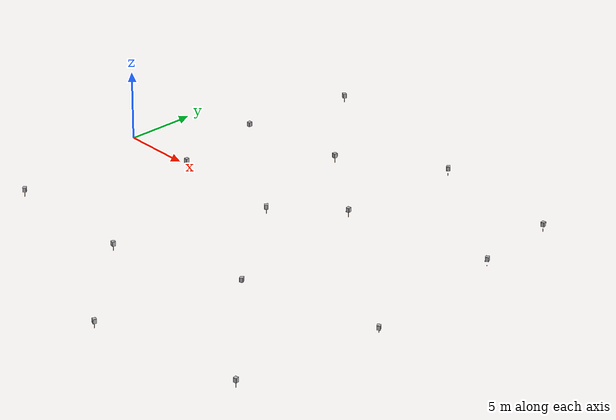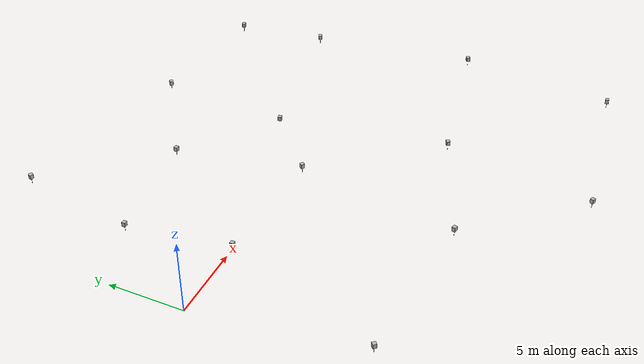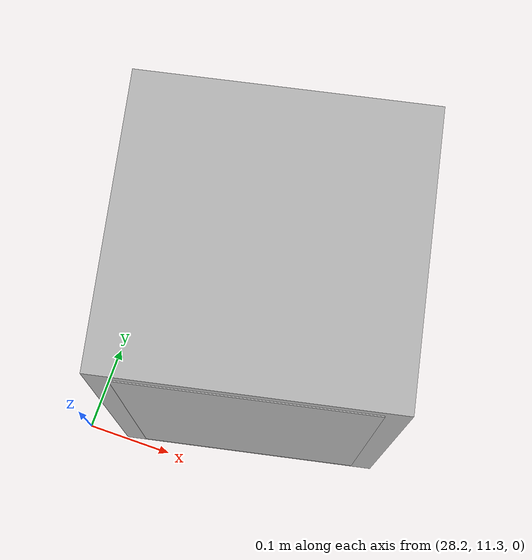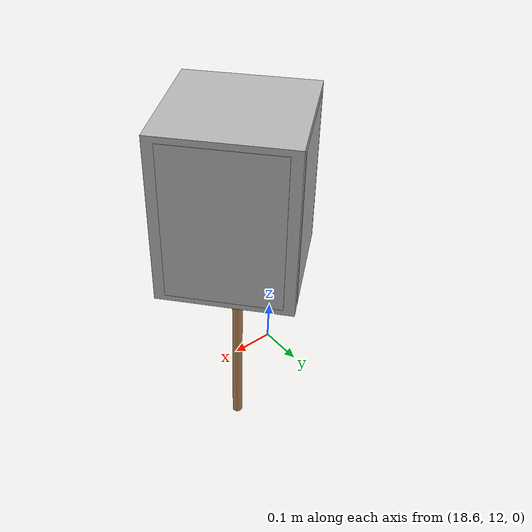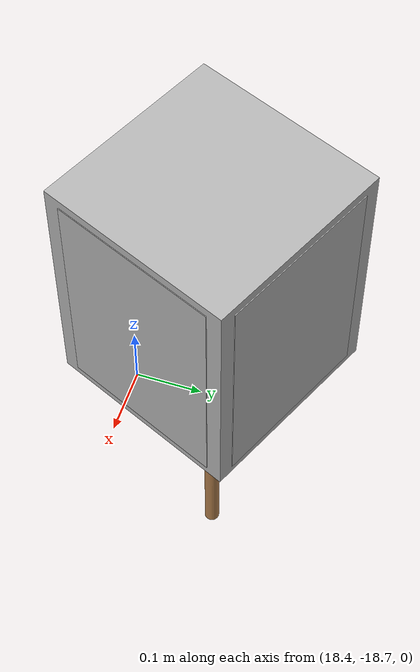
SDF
<sdf version="1.6">
 <world name="marsyard2020">
  <physics type="ode"><ode><solver><friction_model>cone_model</friction_model></solver></ode></physics>
  <light name="sun" type="directional">
   <pose>0 0 100 0.5 0.5 0</pose>
   <diffuse>1 1 1 1</diffuse>
   <specular>0.1 0.1 0.1 1</specular>
   <direction>0.1 0.1 -0.9</direction>
   <attenuation>
    <range>20</range>
    <constant>0.5</constant>
    <linear>0.01</linear>
    <quadratic>0.001</quadratic>
   </attenuation>
  </light>
  <scene>
   <ambient>0.6 0.6 0.6 1.0</ambient>
   <sky><clouds><speed>12</speed></clouds></sky>
   <shadows>true</shadows>
   <origin_visual>false</origin_visual>
  </scene>
  <model name="landmark1">
   <pose>5.702769 0 -0.065271 0 0 0</pose>
   <static>true</static>
   <link name="landmark">
    <visual name="pole_visual">
     <pose>0 0 0.09999999999999999 0 0 0</pose>
     <geometry><cylinder><radius>0.01</radius><length>0.4</length></cylinder></geometry>
     <material><script><name>Gazebo/Wood</name></script></material>
    </visual>
    <collision name="pole_collision">
     <pose>0 0 0.09999999999999999 0 0 0</pose>
     <geometry><cylinder><radius>0.01</radius><length>0.4</length></cylinder></geometry>
    </collision>
    <visual name="box_visual">
     <pose>0 0 0.45999999999999996 0 0 0</pose>
     <geometry><box><size>0.25 0.25 0.32</size></box></geometry>
     <material><script><name>ERC_Landmark/Box</name></script></material>
    </visual>
    <collision name="box_collision">
     <pose>0 0 0.45999999999999996 0 0 0</pose>
     <geometry><box><size>0.25 0.25 0.32</size></box></geometry>
    </collision>
    <visual name="sheet1">
     <pose>0 0.1235 0.45999999999999996 0 0 0</pose>
     <geometry><box><size>0.21 0.005 0.297</size></box></geometry>
     <material><script><name>ERC_Landmark/1</name></script></material>
    </visual>
    <visual name="sheet2">
     <pose>0 -0.1235 0.45999999999999996 0 0 0</pose>
     <geometry><box><size>0.21 0.005 0.297</size></box></geometry>
     <material><script><name>ERC_Landmark/1</name></script></material>
    </visual>
    <visual name="sheet3">
     <pose>0.1235 0 0.45999999999999996 0 0 1.5707963267948966</pose>
     <geometry><box><size>0.21 0.005 0.297</size></box></geometry>
     <material><script><name>ERC_Landmark/1</name></script></material>
    </visual>
    <visual name="sheet4">
     <pose>-0.1235 0 0.45999999999999996 0 0 1.5707963267948966</pose>
     <geometry><box><size>0.21 0.005 0.297</size></box></geometry>
     <material><script><name>ERC_Landmark/1</name></script></material>
    </visual>
   </link>
  </model>
  <model name="landmark2">
   <pose>4.503994 6.826416 -0.000455 0 0 0</pose>
   <static>true</static>
   <link name="landmark">
    <visual name="pole_visual">
     <pose>0 0 0.09999999999999999 0 0 0</pose>
     <geometry><cylinder><radius>0.01</radius><length>0.4</length></cylinder></geometry>
     <material><script><name>Gazebo/Wood</name></script></material>
    </visual>
    <collision name="pole_collision">
     <pose>0 0 0.09999999999999999 0 0 0</pose>
     <geometry><cylinder><radius>0.01</radius><length>0.4</length></cylinder></geometry>
    </collision>
    <visual name="box_visual">
     <pose>0 0 0.45999999999999996 0 0 0</pose>
     <geometry><box><size>0.25 0.25 0.32</size></box></geometry>
     <material><script><name>ERC_Landmark/Box</name></script></material>
    </visual>
    <collision name="box_collision">
     <pose>0 0 0.45999999999999996 0 0 0</pose>
     <geometry><box><size>0.25 0.25 0.32</size></box></geometry>
    </collision>
    <visual name="sheet1">
     <pose>0 0.1235 0.45999999999999996 0 0 0</pose>
     <geometry><box><size>0.21 0.005 0.297</size></box></geometry>
     <material><script><name>ERC_Landmark/2</name></script></material>
    </visual>
    <visual name="sheet2">
     <pose>0 -0.1235 0.45999999999999996 0 0 0</pose>
     <geometry><box><size>0.21 0.005 0.297</size></box></geometry>
     <material><script><name>ERC_Landmark/2</name></script></material>
    </visual>
    <visual name="sheet3">
     <pose>0.1235 0 0.45999999999999996 0 0 1.5707963267948966</pose>
     <geometry><box><size>0.21 0.005 0.297</size></box></geometry>
     <material><script><name>ERC_Landmark/2</name></script></material>
    </visual>
    <visual name="sheet4">
     <pose>-0.1235 0 0.45999999999999996 0 0 1.5707963267948966</pose>
     <geometry><box><size>0.21 0.005 0.297</size></box></geometry>
     <material><script><name>ERC_Landmark/2</name></script></material>
    </visual>
   </link>
  </model>
  <model name="landmark3">
   <pose>14.329459 -0.428800 -0.087178 0 0 0.86</pose>
   <static>true</static>
   <link name="landmark">
    <visual name="pole_visual">
     <pose>0 0 0.09999999999999999 0 0 0</pose>
     <geometry><cylinder><radius>0.01</radius><length>0.4</length></cylinder></geometry>
     <material><script><name>Gazebo/Wood</name></script></material>
    </visual>
    <collision name="pole_collision">
     <pose>0 0 0.09999999999999999 0 0 0</pose>
     <geometry><cylinder><radius>0.01</radius><length>0.4</length></cylinder></geometry>
    </collision>
    <visual name="box_visual">
     <pose>0 0 0.45999999999999996 0 0 0</pose>
     <geometry><box><size>0.25 0.25 0.32</size></box></geometry>
     <material><script><name>ERC_Landmark/Box</name></script></material>
    </visual>
    <collision name="box_collision">
     <pose>0 0 0.45999999999999996 0 0 0</pose>
     <geometry><box><size>0.25 0.25 0.32</size></box></geometry>
    </collision>
    <visual name="sheet1">
     <pose>0 0.1235 0.45999999999999996 0 0 0</pose>
     <geometry><box><size>0.21 0.005 0.297</size></box></geometry>
     <material><script><name>ERC_Landmark/3</name></script></material>
    </visual>
    <visual name="sheet2">
     <pose>0 -0.1235 0.45999999999999996 0 0 0</pose>
     <geometry><box><size>0.21 0.005 0.297</size></box></geometry>
     <material><script><name>ERC_Landmark/3</name></script></material>
    </visual>
    <visual name="sheet3">
     <pose>0.1235 0 0.45999999999999996 0 0 1.5707963267948966</pose>
     <geometry><box><size>0.21 0.005 0.297</size></box></geometry>
     <material><script><name>ERC_Landmark/3</name></script></material>
    </visual>
    <visual name="sheet4">
     <pose>-0.1235 0 0.45999999999999996 0 0 1.5707963267948966</pose>
     <geometry><box><size>0.21 0.005 0.297</size></box></geometry>
     <material><script><name>ERC_Landmark/3</name></script></material>
    </visual>
   </link>
  </model>
  <model name="landmark4">
   <pose>29.215900 5.300520 -0.069001 0 0 0.53</pose>
   <static>true</static>
   <link name="landmark">
    <visual name="pole_visual">
     <pose>0 0 0.09999999999999999 0 0 0</pose>
     <geometry><cylinder><radius>0.01</radius><length>0.4</length></cylinder></geometry>
     <material><script><name>Gazebo/Wood</name></script></material>
    </visual>
    <collision name="pole_collision">
     <pose>0 0 0.09999999999999999 0 0 0</pose>
     <geometry><cylinder><radius>0.01</radius><length>0.4</length></cylinder></geometry>
    </collision>
    <visual name="box_visual">
     <pose>0 0 0.45999999999999996 0 0 0</pose>
     <geometry><box><size>0.25 0.25 0.32</size></box></geometry>
     <material><script><name>ERC_Landmark/Box</name></script></material>
    </visual>
    <collision name="box_collision">
     <pose>0 0 0.45999999999999996 0 0 0</pose>
     <geometry><box><size>0.25 0.25 0.32</size></box></geometry>
    </collision>
    <visual name="sheet1">
     <pose>0 0.1235 0.45999999999999996 0 0 0</pose>
     <geometry><box><size>0.21 0.005 0.297</size></box></geometry>
     <material><script><name>ERC_Landmark/4</name></script></material>
    </visual>
    <visual name="sheet2">
     <pose>0 -0.1235 0.45999999999999996 0 0 0</pose>
     <geometry><box><size>0.21 0.005 0.297</size></box></geometry>
     <material><script><name>ERC_Landmark/4</name></script></material>
    </visual>
    <visual name="sheet3">
     <pose>0.1235 0 0.45999999999999996 0 0 1.5707963267948966</pose>
     <geometry><box><size>0.21 0.005 0.297</size></box></geometry>
     <material><script><name>ERC_Landmark/4</name></script></material>
    </visual>
    <visual name="sheet4">
     <pose>-0.1235 0 0.45999999999999996 0 0 1.5707963267948966</pose>
     <geometry><box><size>0.21 0.005 0.297</size></box></geometry>
     <material><script><name>ERC_Landmark/4</name></script></material>
    </visual>
   </link>
  </model>
  <model name="landmark5">
   <pose>12.103476 -11.714824 0.377463 0 0 1.25</pose>
   <static>true</static>
   <link name="landmark">
    <visual name="pole_visual">
     <pose>0 0 0.09999999999999999 0 0 0</pose>
     <geometry><cylinder><radius>0.01</radius><length>0.4</length></cylinder></geometry>
     <material><script><name>Gazebo/Wood</name></script></material>
    </visual>
    <collision name="pole_collision">
     <pose>0 0 0.09999999999999999 0 0 0</pose>
     <geometry><cylinder><radius>0.01</radius><length>0.4</length></cylinder></geometry>
    </collision>
    <visual name="box_visual">
     <pose>0 0 0.45999999999999996 0 0 0</pose>
     <geometry><box><size>0.25 0.25 0.32</size></box></geometry>
     <material><script><name>ERC_Landmark/Box</name></script></material>
    </visual>
    <collision name="box_collision">
     <pose>0 0 0.45999999999999996 0 0 0</pose>
     <geometry><box><size>0.25 0.25 0.32</size></box></geometry>
    </collision>
    <visual name="sheet1">
     <pose>0 0.1235 0.45999999999999996 0 0 0</pose>
     <geometry><box><size>0.21 0.005 0.297</size></box></geometry>
     <material><script><name>ERC_Landmark/5</name></script></material>
    </visual>
    <visual name="sheet2">
     <pose>0 -0.1235 0.45999999999999996 0 0 0</pose>
     <geometry><box><size>0.21 0.005 0.297</size></box></geometry>
     <material><script><name>ERC_Landmark/5</name></script></material>
    </visual>
    <visual name="sheet3">
     <pose>0.1235 0 0.45999999999999996 0 0 1.5707963267948966</pose>
     <geometry><box><size>0.21 0.005 0.297</size></box></geometry>
     <material><script><name>ERC_Landmark/5</name></script></material>
    </visual>
    <visual name="sheet4">
     <pose>-0.1235 0 0.45999999999999996 0 0 1.5707963267948966</pose>
     <geometry><box><size>0.21 0.005 0.297</size></box></geometry>
     <material><script><name>ERC_Landmark/5</name></script></material>
    </visual>
   </link>
  </model>
  <model name="landmark6">
   <pose>18.821705 12.167322 0.12938 0 0 0.73</pose>
   <static>true</static>
   <link name="landmark">
    <visual name="pole_visual">
     <pose>0 0 0.09999999999999999 0 0 0</pose>
     <geometry><cylinder><radius>0.01</radius><length>0.4</length></cylinder></geometry>
     <material><script><name>Gazebo/Wood</name></script></material>
    </visual>
    <collision name="pole_collision">
     <pose>0 0 0.09999999999999999 0 0 0</pose>
     <geometry><cylinder><radius>0.01</radius><length>0.4</length></cylinder></geometry>
    </collision>
    <visual name="box_visual">
     <pose>0 0 0.45999999999999996 0 0 0</pose>
     <geometry><box><size>0.25 0.25 0.32</size></box></geometry>
     <material><script><name>ERC_Landmark/Box</name></script></material>
    </visual>
    <collision name="box_collision">
     <pose>0 0 0.45999999999999996 0 0 0</pose>
     <geometry><box><size>0.25 0.25 0.32</size></box></geometry>
    </collision>
    <visual name="sheet1">
     <pose>0 0.1235 0.45999999999999996 0 0 0</pose>
     <geometry><box><size>0.21 0.005 0.297</size></box></geometry>
     <material><script><name>ERC_Landmark/6</name></script></material>
    </visual>
    <visual name="sheet2">
     <pose>0 -0.1235 0.45999999999999996 0 0 0</pose>
     <geometry><box><size>0.21 0.005 0.297</size></box></geometry>
     <material><script><name>ERC_Landmark/6</name></script></material>
    </visual>
    <visual name="sheet3">
     <pose>0.1235 0 0.45999999999999996 0 0 1.5707963267948966</pose>
     <geometry><box><size>0.21 0.005 0.297</size></box></geometry>
     <material><script><name>ERC_Landmark/6</name></script></material>
    </visual>
    <visual name="sheet4">
     <pose>-0.1235 0 0.45999999999999996 0 0 1.5707963267948966</pose>
     <geometry><box><size>0.21 0.005 0.297</size></box></geometry>
     <material><script><name>ERC_Landmark/6</name></script></material>
    </visual>
   </link>
  </model>
  <model name="landmark7">
   <pose>18.397116 3.251184 -0.032864 0 0 0.19</pose>
   <static>true</static>
   <link name="landmark">
    <visual name="pole_visual">
     <pose>0 0 0.09999999999999999 0 0 0</pose>
     <geometry><cylinder><radius>0.01</radius><length>0.4</length></cylinder></geometry>
     <material><script><name>Gazebo/Wood</name></script></material>
    </visual>
    <collision name="pole_collision">
     <pose>0 0 0.09999999999999999 0 0 0</pose>
     <geometry><cylinder><radius>0.01</radius><length>0.4</length></cylinder></geometry>
    </collision>
    <visual name="box_visual">
     <pose>0 0 0.45999999999999996 0 0 0</pose>
     <geometry><box><size>0.25 0.25 0.32</size></box></geometry>
     <material><script><name>ERC_Landmark/Box</name></script></material>
    </visual>
    <collision name="box_collision">
     <pose>0 0 0.45999999999999996 0 0 0</pose>
     <geometry><box><size>0.25 0.25 0.32</size></box></geometry>
    </collision>
    <visual name="sheet1">
     <pose>0 0.1235 0.45999999999999996 0 0 0</pose>
     <geometry><box><size>0.21 0.005 0.297</size></box></geometry>
     <material><script><name>ERC_Landmark/7</name></script></material>
    </visual>
    <visual name="sheet2">
     <pose>0 -0.1235 0.45999999999999996 0 0 0</pose>
     <geometry><box><size>0.21 0.005 0.297</size></box></geometry>
     <material><script><name>ERC_Landmark/7</name></script></material>
    </visual>
    <visual name="sheet3">
     <pose>0.1235 0 0.45999999999999996 0 0 1.5707963267948966</pose>
     <geometry><box><size>0.21 0.005 0.297</size></box></geometry>
     <material><script><name>ERC_Landmark/7</name></script></material>
    </visual>
    <visual name="sheet4">
     <pose>-0.1235 0 0.45999999999999996 0 0 1.5707963267948966</pose>
     <geometry><box><size>0.21 0.005 0.297</size></box></geometry>
     <material><script><name>ERC_Landmark/7</name></script></material>
    </visual>
   </link>
  </model>
  <model name="landmark8">
   <pose>18.566999 -18.526400 0.0577 0 0 1.16</pose>
   <static>true</static>
   <link name="landmark">
    <visual name="pole_visual">
     <pose>0 0 0.09999999999999999 0 0 0</pose>
     <geometry><cylinder><radius>0.01</radius><length>0.4</length></cylinder></geometry>
     <material><script><name>Gazebo/Wood</name></script></material>
    </visual>
    <collision name="pole_collision">
     <pose>0 0 0.09999999999999999 0 0 0</pose>
     <geometry><cylinder><radius>0.01</radius><length>0.4</length></cylinder></geometry>
    </collision>
    <visual name="box_visual">
     <pose>0 0 0.45999999999999996 0 0 0</pose>
     <geometry><box><size>0.25 0.25 0.32</size></box></geometry>
     <material><script><name>ERC_Landmark/Box</name></script></material>
    </visual>
    <collision name="box_collision">
     <pose>0 0 0.45999999999999996 0 0 0</pose>
     <geometry><box><size>0.25 0.25 0.32</size></box></geometry>
    </collision>
    <visual name="sheet1">
     <pose>0 0.1235 0.45999999999999996 0 0 0</pose>
     <geometry><box><size>0.21 0.005 0.297</size></box></geometry>
     <material><script><name>ERC_Landmark/8</name></script></material>
    </visual>
    <visual name="sheet2">
     <pose>0 -0.1235 0.45999999999999996 0 0 0</pose>
     <geometry><box><size>0.21 0.005 0.297</size></box></geometry>
     <material><script><name>ERC_Landmark/8</name></script></material>
    </visual>
    <visual name="sheet3">
     <pose>0.1235 0 0.45999999999999996 0 0 1.5707963267948966</pose>
     <geometry><box><size>0.21 0.005 0.297</size></box></geometry>
     <material><script><name>ERC_Landmark/8</name></script></material>
    </visual>
    <visual name="sheet4">
     <pose>-0.1235 0 0.45999999999999996 0 0 1.5707963267948966</pose>
     <geometry><box><size>0.21 0.005 0.297</size></box></geometry>
     <material><script><name>ERC_Landmark/8</name></script></material>
    </visual>
   </link>
  </model>
  <model name="landmark9">
   <pose>12.228898 7.785070 0.127643 0 0 1.47</pose>
   <static>true</static>
   <link name="landmark">
    <visual name="pole_visual">
     <pose>0 0 0.09999999999999999 0 0 0</pose>
     <geometry><cylinder><radius>0.01</radius><length>0.4</length></cylinder></geometry>
     <material><script><name>Gazebo/Wood</name></script></material>
    </visual>
    <collision name="pole_collision">
     <pose>0 0 0.09999999999999999 0 0 0</pose>
     <geometry><cylinder><radius>0.01</radius><length>0.4</length></cylinder></geometry>
    </collision>
    <visual name="box_visual">
     <pose>0 0 0.45999999999999996 0 0 0</pose>
     <geometry><box><size>0.25 0.25 0.32</size></box></geometry>
     <material><script><name>ERC_Landmark/Box</name></script></material>
    </visual>
    <collision name="box_collision">
     <pose>0 0 0.45999999999999996 0 0 0</pose>
     <geometry><box><size>0.25 0.25 0.32</size></box></geometry>
    </collision>
    <visual name="sheet1">
     <pose>0 0.1235 0.45999999999999996 0 0 0</pose>
     <geometry><box><size>0.21 0.005 0.297</size></box></geometry>
     <material><script><name>ERC_Landmark/9</name></script></material>
    </visual>
    <visual name="sheet2">
     <pose>0 -0.1235 0.45999999999999996 0 0 0</pose>
     <geometry><box><size>0.21 0.005 0.297</size></box></geometry>
     <material><script><name>ERC_Landmark/9</name></script></material>
    </visual>
    <visual name="sheet3">
     <pose>0.1235 0 0.45999999999999996 0 0 1.5707963267948966</pose>
     <geometry><box><size>0.21 0.005 0.297</size></box></geometry>
     <material><script><name>ERC_Landmark/9</name></script></material>
    </visual>
    <visual name="sheet4">
     <pose>-0.1235 0 0.45999999999999996 0 0 1.5707963267948966</pose>
     <geometry><box><size>0.21 0.005 0.297</size></box></geometry>
     <material><script><name>ERC_Landmark/9</name></script></material>
    </visual>
   </link>
  </model>
  <model name="landmark10">
   <pose>20.629101 -8.191796 -0.069001 0 0 0.61</pose>
   <static>true</static>
   <link name="landmark">
    <visual name="pole_visual">
     <pose>0 0 0.09999999999999999 0 0 0</pose>
     <geometry><cylinder><radius>0.01</radius><length>0.4</length></cylinder></geometry>
     <material><script><name>Gazebo/Wood</name></script></material>
    </visual>
    <collision name="pole_collision">
     <pose>0 0 0.09999999999999999 0 0 0</pose>
     <geometry><cylinder><radius>0.01</radius><length>0.4</length></cylinder></geometry>
    </collision>
    <visual name="box_visual">
     <pose>0 0 0.45999999999999996 0 0 0</pose>
     <geometry><box><size>0.25 0.25 0.32</size></box></geometry>
     <material><script><name>ERC_Landmark/Box</name></script></material>
    </visual>
    <collision name="box_collision">
     <pose>0 0 0.45999999999999996 0 0 0</pose>
     <geometry><box><size>0.25 0.25 0.32</size></box></geometry>
    </collision>
    <visual name="sheet1">
     <pose>0 0.1235 0.45999999999999996 0 0 0</pose>
     <geometry><box><size>0.21 0.005 0.297</size></box></geometry>
     <material><script><name>ERC_Landmark/10</name></script></material>
    </visual>
    <visual name="sheet2">
     <pose>0 -0.1235 0.45999999999999996 0 0 0</pose>
     <geometry><box><size>0.21 0.005 0.297</size></box></geometry>
     <material><script><name>ERC_Landmark/10</name></script></material>
    </visual>
    <visual name="sheet3">
     <pose>0.1235 0 0.45999999999999996 0 0 1.5707963267948966</pose>
     <geometry><box><size>0.21 0.005 0.297</size></box></geometry>
     <material><script><name>ERC_Landmark/10</name></script></material>
    </visual>
    <visual name="sheet4">
     <pose>-0.1235 0 0.45999999999999996 0 0 1.5707963267948966</pose>
     <geometry><box><size>0.21 0.005 0.297</size></box></geometry>
     <material><script><name>ERC_Landmark/10</name></script></material>
    </visual>
   </link>
  </model>
  <model name="landmark11">
   <pose>29.695601 -16.672436 0.078902 0 0 0.16</pose>
   <static>true</static>
   <link name="landmark">
    <visual name="pole_visual">
     <pose>0 0 0.09999999999999999 0 0 0</pose>
     <geometry><cylinder><radius>0.01</radius><length>0.4</length></cylinder></geometry>
     <material><script><name>Gazebo/Wood</name></script></material>
    </visual>
    <collision name="pole_collision">
     <pose>0 0 0.09999999999999999 0 0 0</pose>
     <geometry><cylinder><radius>0.01</radius><length>0.4</length></cylinder></geometry>
    </collision>
    <visual name="box_visual">
     <pose>0 0 0.45999999999999996 0 0 0</pose>
     <geometry><box><size>0.25 0.25 0.32</size></box></geometry>
     <material><script><name>ERC_Landmark/Box</name></script></material>
    </visual>
    <collision name="box_collision">
     <pose>0 0 0.45999999999999996 0 0 0</pose>
     <geometry><box><size>0.25 0.25 0.32</size></box></geometry>
    </collision>
    <visual name="sheet1">
     <pose>0 0.1235 0.45999999999999996 0 0 0</pose>
     <geometry><box><size>0.21 0.005 0.297</size></box></geometry>
     <material><script><name>ERC_Landmark/11</name></script></material>
    </visual>
    <visual name="sheet2">
     <pose>0 -0.1235 0.45999999999999996 0 0 0</pose>
     <geometry><box><size>0.21 0.005 0.297</size></box></geometry>
     <material><script><name>ERC_Landmark/11</name></script></material>
    </visual>
    <visual name="sheet3">
     <pose>0.1235 0 0.45999999999999996 0 0 1.5707963267948966</pose>
     <geometry><box><size>0.21 0.005 0.297</size></box></geometry>
     <material><script><name>ERC_Landmark/11</name></script></material>
    </visual>
    <visual name="sheet4">
     <pose>-0.1235 0 0.45999999999999996 0 0 1.5707963267948966</pose>
     <geometry><box><size>0.21 0.005 0.297</size></box></geometry>
     <material><script><name>ERC_Landmark/11</name></script></material>
    </visual>
   </link>
  </model>
  <model name="landmark12">
   <pose>28.375999 11.429800 -0.09303 0 0 0.21</pose>
   <static>true</static>
   <link name="landmark">
    <visual name="pole_visual">
     <pose>0 0 0.09999999999999999 0 0 0</pose>
     <geometry><cylinder><radius>0.01</radius><length>0.4</length></cylinder></geometry>
     <material><script><name>Gazebo/Wood</name></script></material>
    </visual>
    <collision name="pole_collision">
     <pose>0 0 0.09999999999999999 0 0 0</pose>
     <geometry><cylinder><radius>0.01</radius><length>0.4</length></cylinder></geometry>
    </collision>
    <visual name="box_visual">
     <pose>0 0 0.45999999999999996 0 0 0</pose>
     <geometry><box><size>0.25 0.25 0.32</size></box></geometry>
     <material><script><name>ERC_Landmark/Box</name></script></material>
    </visual>
    <collision name="box_collision">
     <pose>0 0 0.45999999999999996 0 0 0</pose>
     <geometry><box><size>0.25 0.25 0.32</size></box></geometry>
    </collision>
    <visual name="sheet1">
     <pose>0 0.1235 0.45999999999999996 0 0 0</pose>
     <geometry><box><size>0.21 0.005 0.297</size></box></geometry>
     <material><script><name>ERC_Landmark/12</name></script></material>
    </visual>
    <visual name="sheet2">
     <pose>0 -0.1235 0.45999999999999996 0 0 0</pose>
     <geometry><box><size>0.21 0.005 0.297</size></box></geometry>
     <material><script><name>ERC_Landmark/12</name></script></material>
    </visual>
    <visual name="sheet3">
     <pose>0.1235 0 0.45999999999999996 0 0 1.5707963267948966</pose>
     <geometry><box><size>0.21 0.005 0.297</size></box></geometry>
     <material><script><name>ERC_Landmark/12</name></script></material>
    </visual>
    <visual name="sheet4">
     <pose>-0.1235 0 0.45999999999999996 0 0 1.5707963267948966</pose>
     <geometry><box><size>0.21 0.005 0.297</size></box></geometry>
     <material><script><name>ERC_Landmark/12</name></script></material>
    </visual>
   </link>
  </model>
  <model name="landmark13">
   <pose>30.889601 -5.985371 0.008829 0 0 0.61</pose>
   <static>true</static>
   <link name="landmark">
    <visual name="pole_visual">
     <pose>0 0 0.09999999999999999 0 0 0</pose>
     <geometry><cylinder><radius>0.01</radius><length>0.4</length></cylinder></geometry>
     <material><script><name>Gazebo/Wood</name></script></material>
    </visual>
    <collision name="pole_collision">
     <pose>0 0 0.09999999999999999 0 0 0</pose>
     <geometry><cylinder><radius>0.01</radius><length>0.4</length></cylinder></geometry>
    </collision>
    <visual name="box_visual">
     <pose>0 0 0.45999999999999996 0 0 0</pose>
     <geometry><box><size>0.25 0.25 0.32</size></box></geometry>
     <material><script><name>ERC_Landmark/Box</name></script></material>
    </visual>
    <collision name="box_collision">
     <pose>0 0 0.45999999999999996 0 0 0</pose>
     <geometry><box><size>0.25 0.25 0.32</size></box></geometry>
    </collision>
    <visual name="sheet1">
     <pose>0 0.1235 0.45999999999999996 0 0 0</pose>
     <geometry><box><size>0.21 0.005 0.297</size></box></geometry>
     <material><script><name>ERC_Landmark/13</name></script></material>
    </visual>
    <visual name="sheet2">
     <pose>0 -0.1235 0.45999999999999996 0 0 0</pose>
     <geometry><box><size>0.21 0.005 0.297</size></box></geometry>
     <material><script><name>ERC_Landmark/13</name></script></material>
    </visual>
    <visual name="sheet3">
     <pose>0.1235 0 0.45999999999999996 0 0 1.5707963267948966</pose>
     <geometry><box><size>0.21 0.005 0.297</size></box></geometry>
     <material><script><name>ERC_Landmark/13</name></script></material>
    </visual>
    <visual name="sheet4">
     <pose>-0.1235 0 0.45999999999999996 0 0 1.5707963267948966</pose>
     <geometry><box><size>0.21 0.005 0.297</size></box></geometry>
     <material><script><name>ERC_Landmark/13</name></script></material>
    </visual>
   </link>
  </model>
  <model name="landmark14">
   <pose>1.717059 -10.908800 -0.009376 0 0 0.73</pose>
   <static>true</static>
   <link name="landmark">
    <visual name="pole_visual">
     <pose>0 0 0.09999999999999999 0 0 0</pose>
     <geometry><cylinder><radius>0.01</radius><length>0.4</length></cylinder></geometry>
     <material><script><name>Gazebo/Wood</name></script></material>
    </visual>
    <collision name="pole_collision">
     <pose>0 0 0.09999999999999999 0 0 0</pose>
     <geometry><cylinder><radius>0.01</radius><length>0.4</length></cylinder></geometry>
    </collision>
    <visual name="box_visual">
     <pose>0 0 0.45999999999999996 0 0 0</pose>
     <geometry><box><size>0.25 0.25 0.32</size></box></geometry>
     <material><script><name>ERC_Landmark/Box</name></script></material>
    </visual>
    <collision name="box_collision">
     <pose>0 0 0.45999999999999996 0 0 0</pose>
     <geometry><box><size>0.25 0.25 0.32</size></box></geometry>
    </collision>
    <visual name="sheet1">
     <pose>0 0.1235 0.45999999999999996 0 0 0</pose>
     <geometry><box><size>0.21 0.005 0.297</size></box></geometry>
     <material><script><name>ERC_Landmark/14</name></script></material>
    </visual>
    <visual name="sheet2">
     <pose>0 -0.1235 0.45999999999999996 0 0 0</pose>
     <geometry><box><size>0.21 0.005 0.297</size></box></geometry>
     <material><script><name>ERC_Landmark/14</name></script></material>
    </visual>
    <visual name="sheet3">
     <pose>0.1235 0 0.45999999999999996 0 0 1.5707963267948966</pose>
     <geometry><box><size>0.21 0.005 0.297</size></box></geometry>
     <material><script><name>ERC_Landmark/14</name></script></material>
    </visual>
    <visual name="sheet4">
     <pose>-0.1235 0 0.45999999999999996 0 0 1.5707963267948966</pose>
     <geometry><box><size>0.21 0.005 0.297</size></box></geometry>
     <material><script><name>ERC_Landmark/14</name></script></material>
    </visual>
   </link>
  </model>
  <model name="landmark15">
   <pose>5.813930 14.724000 0.114653 0 0 -0.457594</pose>
   <static>true</static>
   <link name="landmark">
    <visual name="pole_visual">
     <pose>0 0 0.09999999999999999 0 0 0</pose>
     <geometry><cylinder><radius>0.01</radius><length>0.4</length></cylinder></geometry>
     <material><script><name>Gazebo/Wood</name></script></material>
    </visual>
    <collision name="pole_collision">
     <pose>0 0 0.09999999999999999 0 0 0</pose>
     <geometry><cylinder><radius>0.01</radius><length>0.4</length></cylinder></geometry>
    </collision>
    <visual name="box_visual">
     <pose>0 0 0.45999999999999996 0 0 0</pose>
     <geometry><box><size>0.25 0.25 0.32</size></box></geometry>
     <material><script><name>ERC_Landmark/Box</name></script></material>
    </visual>
    <collision name="box_collision">
     <pose>0 0 0.45999999999999996 0 0 0</pose>
     <geometry><box><size>0.25 0.25 0.32</size></box></geometry>
    </collision>
    <visual name="sheet1">
     <pose>0 0.1235 0.45999999999999996 0 0 0</pose>
     <geometry><box><size>0.21 0.005 0.297</size></box></geometry>
     <material><script><name>ERC_Landmark/15</name></script></material>
    </visual>
    <visual name="sheet2">
     <pose>0 -0.1235 0.45999999999999996 0 0 0</pose>
     <geometry><box><size>0.21 0.005 0.297</size></box></geometry>
     <material><script><name>ERC_Landmark/15</name></script></material>
    </visual>
    <visual name="sheet3">
     <pose>0.1235 0 0.45999999999999996 0 0 1.5707963267948966</pose>
     <geometry><box><size>0.21 0.005 0.297</size></box></geometry>
     <material><script><name>ERC_Landmark/15</name></script></material>
    </visual>
    <visual name="sheet4">
     <pose>-0.1235 0 0.45999999999999996 0 0 1.5707963267948966</pose>
     <geometry><box><size>0.21 0.005 0.297</size></box></geometry>
     <material><script><name>ERC_Landmark/15</name></script></material>
    </visual>
   </link>
  </model>
 </world>
</sdf>
